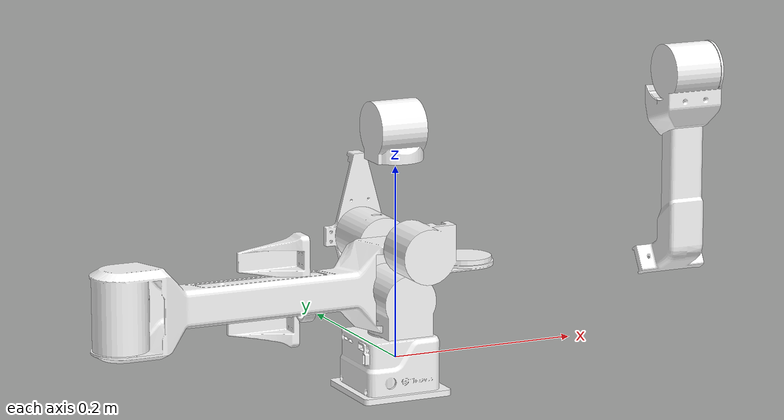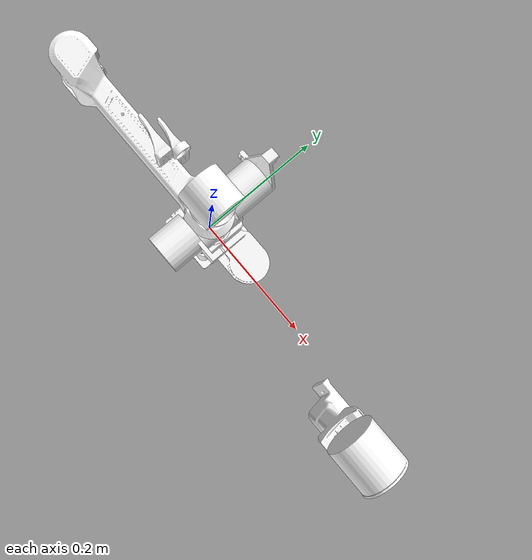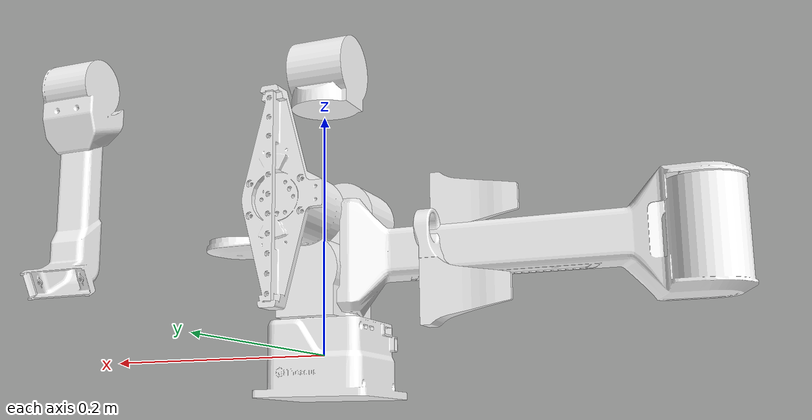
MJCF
<mujoco model="fangzhenjixiebi">
  <compiler angle="radian"/>

  <asset>
    <mesh name="base_link" file="base_link.STL"/>
    <mesh name="1_Link" file="1_Link.STL"/>
    <mesh name="2_Link" file="2_Link.STL"/>
    <mesh name="3_Link" file="3_Link.STL"/>
    <mesh name="4_Link" file="4_Link.STL"/>
    <mesh name="5_Link" file="5_Link.STL"/>
    <mesh name="6_Link" content_type="model/stl" file="6_Link.STL"/>
    <mesh name="9_1_Link" content_type="model/stl" file="9_1_Link.STL"/>
    <mesh name="9_2_Link" content_type="model/stl" file="9_2_Link.STL"/>
  </asset>

  <worldbody>
    <geom type="mesh" rgba="1 1 1 1" mesh="base_link"/>
    <body name="1_Link">
      <inertial pos="0 5e-06 0.0590654" quat="0.707107 0.707107 0 0" mass="0.240435" diaginertia="0.000186308 0.000164031 0.000128092"/>
      <joint name="1joint" pos="0 0 0" axis="0 0 1" range="-2.967 2.967" actuatorfrcrange="-9 9"/>
      <geom type="mesh" rgba="1 1 1 1" mesh="1_Link"/>
      <body name="2_Link" pos="0 0 0.065224" quat="0.707105 0.707108 0 0">
        <inertial pos="0.251877 -0.0121583 0.000522957" quat="0.495455 0.496263 0.503548 0.504665" mass="0.27896" diaginertia="0.00101012 0.000968578 0.00016357"/>
        <joint name="2joint" pos="0 0 0" axis="0 0 1" range="0 3.14" actuatorfrcrange="-9 9"/>
        <geom pos="0 0.012094 0" quat="1 0 0 0" type="mesh" rgba="1 1 1 1" mesh="2_Link"/>
        <body name="3_Link" pos="0.3 0 0.0005" quat="0.707105 0 0 0.707108">
          <inertial pos="0.0566283 0.190562 -0.00330663" quat="0.513715 0.466789 -0.510042 0.507998" mass="0.196496" diaginertia="0.000365387 0.000357218 7.49679e-05"/>
          <joint name="3joint" pos="0 0 0" axis="0 0 -1" range="0 3.14" actuatorfrcrange="-9 9"/>
          <geom type="mesh" rgba="1 1 1 1" mesh="3_Link"/>
          <body name="4_Link" pos="0.057369 0.22028 -0.000495" quat="0.707105 0 0 0.707108">
            <inertial pos="0.0683668 -0.0480245 0.00305266" quat="0.314468 0.759366 -0.143647 0.551216" mass="0.157398" diaginertia="0.000221164 0.000219057 6.08582e-05"/>
            <joint name="4joint" pos="0 0 0" axis="0 0 1" range="-1.57 1.518" actuatorfrcrange="-3 3"/>
            <geom type="mesh" rgba="1 1 1 1" mesh="4_Link"/>
            <body name="5_Link" pos="0.080666 -0.05857 0.00047555" quat="0.707105 -0.707108 0 0">
              <inertial pos="0.00107781 9.47221e-11 0.0546028" quat="0.998968 -2.28286e-07 0.0454145 -5.02154e-06" mass="0.148471" diaginertia="7.23521e-05 7.08257e-05 6.2135e-05"/>
              <joint name="5joint" pos="0 0 0" axis="0 0 1" range="-1.57 1.57" actuatorfrcrange="-3 3"/>
              <geom type="mesh" rgba="1 1 1 1" mesh="5_Link"/>
              <body name="6_Link" pos="0 0 0.059088" quat="0.499998 0.5 0.500002 0.5">
                <inertial pos="-2.83638e-08 -0.00995222 0.0624149" quat="-0.00238369 0.707103 -0.00238369 0.707103" mass="0.191166" diaginertia="0.000155312 0.000139085 5.70486e-05"/>
                <joint name="6joint" pos="0 0 0" axis="0 0 1" range="-1.57 1.57" actuatorfrcrange="-3 3"/>
                <geom pos="0 0.0095 0" quat="1 0 0 0" type="mesh" rgba="1 1 1 1" mesh="6_Link"/>
                <body name="7_Link" pos="0.0138 0.016 0.093039">
                  <inertial pos="0 0 0.0491021" quat="0.99777 0 0 0.0667449" mass="0.0763456" diaginertia="2.79204e-05 2.01434e-05 1.69657e-05"/>
                  <joint name="8joint" pos="0 0 0" axis="1 0 0" type="slide" range="0 0.05" actuatorfrcrange="-3 3"/>
                  <geom type="mesh" rgba="1 1 1 1" mesh="9_1_Link"/>
                </body>
                <body name="8_Link" pos="-0.0138 -0.016 0.093039">
                  <inertial pos="0 0 0.0491021" quat="0.99777 0 0 0.0667449" mass="0.0763456" diaginertia="2.79204e-05 2.01434e-05 1.69657e-05"/>
                  <joint name="7joint" pos="0 0 0" axis="-1 0 0" type="slide" range="0 0.05" actuatorfrcrange="-3 3"/>
                  <geom type="mesh" rgba="1 1 1 1" mesh="9_2_Link"/>
                </body>
              </body>
            </body>
          </body>
        </body>
      </body>
    </body>

  </worldbody>
  <contact>
    <exclude body1="4_Link" body2="6_Link"/>
  </contact>
</mujoco>
